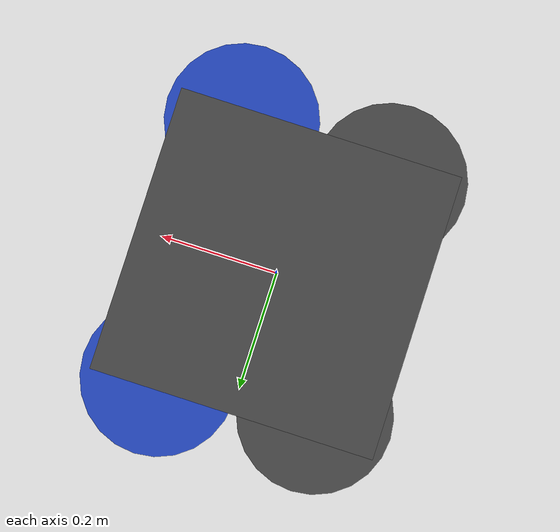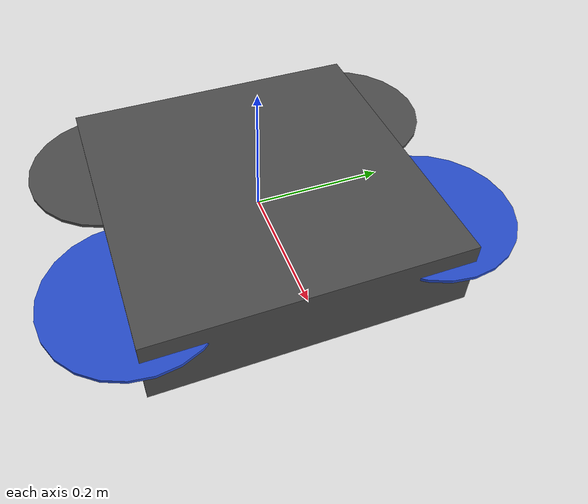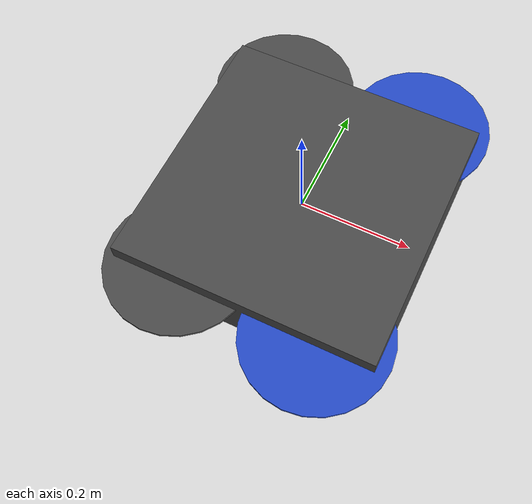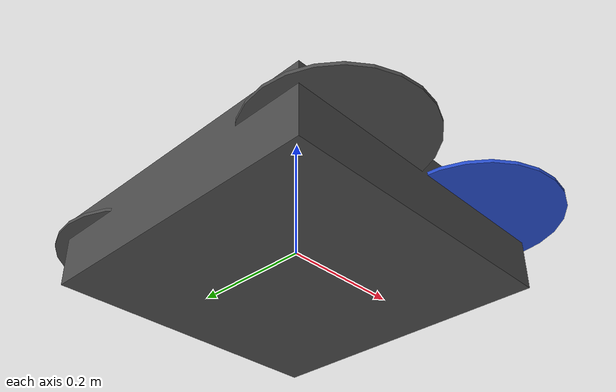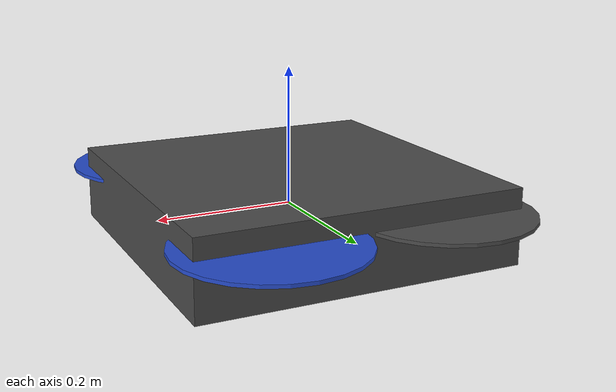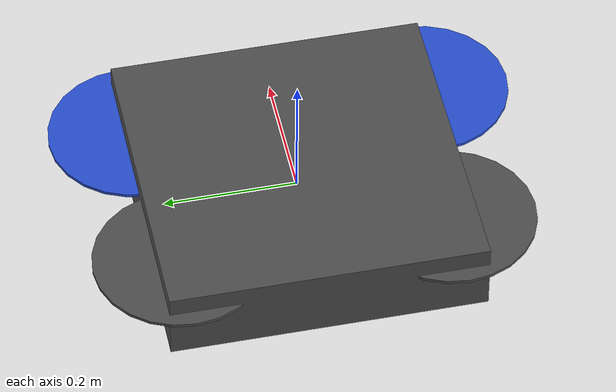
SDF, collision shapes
<sdf version='1.6'>
  <model name='iris'>
    <link name='base_link'>
      <pose frame=''>0 0 0 0 -0 0</pose>
      <inertial>
        <pose frame=''>0 0 0 0 -0 0</pose>
        <mass>1.5</mass>
        <inertia>
          <ixx>0.0347563</ixx>
          <ixy>0</ixy>
          <ixz>0</ixz>
          <iyy>0.0458929</iyy>
          <iyz>0</iyz>
          <izz>0.0977</izz>
        </inertia>
      </inertial>
      <collision name='base_link_inertia_collision'>
        <pose frame=''>0 0 0 0 -0 0</pose>
        <geometry>
          <box>
            <size>0.47 0.47 0.11</size>
          </box>
        </geometry>
        <surface>
          <contact>
            <ode>
              <min_depth>0.001</min_depth>
              <max_vel>0</max_vel>
            </ode>
          </contact>
          <friction>
            <ode/>
          </friction>
        </surface>
      </collision>
      <visual name='base_link_inertia_visual'>
        <pose frame=''>0 0 0 0 -0 0</pose>
        <geometry>
          <mesh>
            <scale>1 1 1</scale>
            <uri>model://rotors_description/meshes/iris.stl</uri>
          </mesh>
        </geometry>
        <material>
          <script>
            <name>Gazebo/DarkGrey</name>
            <uri>file://media/materials/scripts/gazebo.material</uri>
          </script>
        </material>
      </visual>
      <gravity>1</gravity>
      <velocity_decay/>
    </link>
    <link name='/imu_link'>
      <pose frame=''>0 0 0 0 -0 0</pose>
      <inertial>
        <pose frame=''>0 0 0 0 -0 0</pose>
        <mass>0.015</mass>
        <inertia>
          <ixx>1e-05</ixx>
          <ixy>0</ixy>
          <ixz>0</ixz>
          <iyy>1e-05</iyy>
          <iyz>0</iyz>
          <izz>1e-05</izz>
        </inertia>
      </inertial>
    </link>
    <joint name='/imu_joint' type='revolute'>
      <child>/imu_link</child>
      <parent>base_link</parent>
      <axis>
        <xyz>1 0 0</xyz>
        <limit>
          <lower>0</lower>
          <upper>0</upper>
          <effort>0</effort>
          <velocity>0</velocity>
        </limit>
        <dynamics>
          <spring_reference>0</spring_reference>
          <spring_stiffness>0</spring_stiffness>
        </dynamics>
        <use_parent_model_frame>1</use_parent_model_frame>
      </axis>
    </joint>
    <link name='rotor_0'>
      <pose frame=''>0.13 -0.22 0.023 0 -0 0</pose>
      <inertial>
        <pose frame=''>0 0 0 0 -0 0</pose>
        <mass>0.005</mass>
        <inertia>
          <ixx>9.75e-07</ixx>
          <ixy>0</ixy>
          <ixz>0</ixz>
          <iyy>0.000273104</iyy>
          <iyz>0</iyz>
          <izz>0.000274004</izz>
        </inertia>
      </inertial>
      <collision name='rotor_0_collision'>
        <pose frame=''>0 0 0 0 -0 0</pose>
        <geometry>
          <cylinder>
            <length>0.005</length>
            <radius>0.128</radius>
          </cylinder>
        </geometry>
        <surface>
          <contact>
            <ode/>
          </contact>
          <friction>
            <ode/>
          </friction>
        </surface>
      </collision>
      <visual name='rotor_0_visual'>
        <pose frame=''>0 0 0 0 -0 0</pose>
        <geometry>
          <mesh>
            <scale>1 1 1</scale>
            <uri>model://rotors_description/meshes/iris_prop_ccw.dae</uri>
          </mesh>
        </geometry>
        <material>
          <script>
            <name>Gazebo/Blue</name>
            <uri>file://media/materials/scripts/gazebo.material</uri>
          </script>
        </material>
      </visual>
      <gravity>1</gravity>
      <velocity_decay/>
    </link>
    <joint name='rotor_0_joint' type='revolute'>
      <child>rotor_0</child>
      <parent>base_link</parent>
      <axis>
        <xyz>0 0 1</xyz>
        <limit>
          <lower>-1e+16</lower>
          <upper>1e+16</upper>
        </limit>
        <dynamics>
          <spring_reference>0</spring_reference>
          <spring_stiffness>0</spring_stiffness>
        </dynamics>
        <use_parent_model_frame>1</use_parent_model_frame>
      </axis>
    </joint>
    <link name='rotor_1'>
      <pose frame=''>-0.13 0.2 0.023 0 -0 0</pose>
      <inertial>
        <pose frame=''>0 0 0 0 -0 0</pose>
        <mass>0.005</mass>
        <inertia>
          <ixx>9.75e-07</ixx>
          <ixy>0</ixy>
          <ixz>0</ixz>
          <iyy>0.000273104</iyy>
          <iyz>0</iyz>
          <izz>0.000274004</izz>
        </inertia>
      </inertial>
      <collision name='rotor_1_collision'>
        <pose frame=''>0 0 0 0 -0 0</pose>
        <geometry>
          <cylinder>
            <length>0.005</length>
            <radius>0.128</radius>
          </cylinder>
        </geometry>
        <surface>
          <contact>
            <ode/>
          </contact>
          <friction>
            <ode/>
          </friction>
        </surface>
      </collision>
      <visual name='rotor_1_visual'>
        <pose frame=''>0 0 0 0 -0 0</pose>
        <geometry>
          <mesh>
            <scale>1 1 1</scale>
            <uri>model://rotors_description/meshes/iris_prop_ccw.dae</uri>
          </mesh>
        </geometry>
        <material>
          <script>
            <name>Gazebo/DarkGrey</name>
            <uri>file://media/materials/scripts/gazebo.material</uri>
          </script>
        </material>
      </visual>
      <gravity>1</gravity>
      <velocity_decay/>
    </link>
    <joint name='rotor_1_joint' type='revolute'>
      <child>rotor_1</child>
      <parent>base_link</parent>
      <axis>
        <xyz>0 0 1</xyz>
        <limit>
          <lower>-1e+16</lower>
          <upper>1e+16</upper>
        </limit>
        <dynamics>
          <spring_reference>0</spring_reference>
          <spring_stiffness>0</spring_stiffness>
        </dynamics>
        <use_parent_model_frame>1</use_parent_model_frame>
      </axis>
    </joint>
    <link name='rotor_2'>
      <pose frame=''>0.13 0.22 0.023 0 -0 0</pose>
      <inertial>
        <pose frame=''>0 0 0 0 -0 0</pose>
        <mass>0.005</mass>
        <inertia>
          <ixx>9.75e-07</ixx>
          <ixy>0</ixy>
          <ixz>0</ixz>
          <iyy>0.000273104</iyy>
          <iyz>0</iyz>
          <izz>0.000274004</izz>
        </inertia>
      </inertial>
      <collision name='rotor_2_collision'>
        <pose frame=''>0 0 0 0 -0 0</pose>
        <geometry>
          <cylinder>
            <length>0.005</length>
            <radius>0.128</radius>
          </cylinder>
        </geometry>
        <surface>
          <contact>
            <ode/>
          </contact>
          <friction>
            <ode/>
          </friction>
        </surface>
      </collision>
      <visual name='rotor_2_visual'>
        <pose frame=''>0 0 0 0 -0 0</pose>
        <geometry>
          <mesh>
            <scale>1 1 1</scale>
            <uri>model://rotors_description/meshes/iris_prop_cw.dae</uri>
          </mesh>
        </geometry>
        <material>
          <script>
            <name>Gazebo/Blue</name>
            <uri>file://media/materials/scripts/gazebo.material</uri>
          </script>
        </material>
      </visual>
      <gravity>1</gravity>
      <velocity_decay/>
    </link>
    <joint name='rotor_2_joint' type='revolute'>
      <child>rotor_2</child>
      <parent>base_link</parent>
      <axis>
        <xyz>0 0 1</xyz>
        <limit>
          <lower>-1e+16</lower>
          <upper>1e+16</upper>
        </limit>
        <dynamics>
          <spring_reference>0</spring_reference>
          <spring_stiffness>0</spring_stiffness>
        </dynamics>
        <use_parent_model_frame>1</use_parent_model_frame>
      </axis>
    </joint>
    <link name='rotor_3'>
      <pose frame=''>-0.13 -0.2 0.023 0 -0 0</pose>
      <inertial>
        <pose frame=''>0 0 0 0 -0 0</pose>
        <mass>0.005</mass>
        <inertia>
          <ixx>9.75e-07</ixx>
          <ixy>0</ixy>
          <ixz>0</ixz>
          <iyy>0.000273104</iyy>
          <iyz>0</iyz>
          <izz>0.000274004</izz>
        </inertia>
      </inertial>
      <collision name='rotor_3_collision'>
        <pose frame=''>0 0 0 0 -0 0</pose>
        <geometry>
          <cylinder>
            <length>0.005</length>
            <radius>0.128</radius>
          </cylinder>
        </geometry>
        <surface>
          <contact>
            <ode/>
          </contact>
          <friction>
            <ode/>
          </friction>
        </surface>
      </collision>
      <visual name='rotor_3_visual'>
        <pose frame=''>0 0 0 0 -0 0</pose>
        <geometry>
          <mesh>
            <scale>1 1 1</scale>
            <uri>model://rotors_description/meshes/iris_prop_cw.dae</uri>
          </mesh>
        </geometry>
        <material>
          <script>
            <name>Gazebo/DarkGrey</name>
            <uri>file://media/materials/scripts/gazebo.material</uri>
          </script>
        </material>
      </visual>
      <gravity>1</gravity>
      <velocity_decay/>
    </link>
    <joint name='rotor_3_joint' type='revolute'>
      <child>rotor_3</child>
      <parent>base_link</parent>
      <axis>
        <xyz>0 0 1</xyz>
        <limit>
          <lower>-1e+16</lower>
          <upper>1e+16</upper>
        </limit>
        <dynamics>
          <spring_reference>0</spring_reference>
          <spring_stiffness>0</spring_stiffness>
        </dynamics>
        <use_parent_model_frame>1</use_parent_model_frame>
      </axis>
    </joint>
    <plugin name='rosbag' filename='libgazebo_multirotor_base_plugin.so'>
      <robotNamespace/>
      <linkName>base_link</linkName>
      <rotorVelocitySlowdownSim>10</rotorVelocitySlowdownSim>
    </plugin>
    <plugin name='front_right_motor_model' filename='libgazebo_motor_model.so'>
      <robotNamespace/>
      <jointName>rotor_0_joint</jointName>
      <linkName>rotor_0</linkName>
      <turningDirection>ccw</turningDirection>
      <timeConstantUp>0.0125</timeConstantUp>
      <timeConstantDown>0.025</timeConstantDown>
      <maxRotVelocity>1100</maxRotVelocity>
      <motorConstant>8.54858e-06</motorConstant>
      <momentConstant>0.06</momentConstant>
      <commandSubTopic>/gazebo/command/motor_speed</commandSubTopic>
      <motorNumber>0</motorNumber>
      <rotorDragCoefficient>0.000806428</rotorDragCoefficient>
      <rollingMomentCoefficient>1e-06</rollingMomentCoefficient>
      <motorSpeedPubTopic>/motor_speed/0</motorSpeedPubTopic>
      <rotorVelocitySlowdownSim>10</rotorVelocitySlowdownSim>
    </plugin>
    <plugin name='back_left_motor_model' filename='libgazebo_motor_model.so'>
      <robotNamespace/>
      <jointName>rotor_1_joint</jointName>
      <linkName>rotor_1</linkName>
      <turningDirection>ccw</turningDirection>
      <timeConstantUp>0.0125</timeConstantUp>
      <timeConstantDown>0.025</timeConstantDown>
      <maxRotVelocity>1100</maxRotVelocity>
      <motorConstant>8.54858e-06</motorConstant>
      <momentConstant>0.06</momentConstant>
      <commandSubTopic>/gazebo/command/motor_speed</commandSubTopic>
      <motorNumber>1</motorNumber>
      <rotorDragCoefficient>0.000806428</rotorDragCoefficient>
      <rollingMomentCoefficient>1e-06</rollingMomentCoefficient>
      <motorSpeedPubTopic>/motor_speed/1</motorSpeedPubTopic>
      <rotorVelocitySlowdownSim>10</rotorVelocitySlowdownSim>
    </plugin>
    <plugin name='front_left_motor_model' filename='libgazebo_motor_model.so'>
      <robotNamespace/>
      <jointName>rotor_2_joint</jointName>
      <linkName>rotor_2</linkName>
      <turningDirection>cw</turningDirection>
      <timeConstantUp>0.0125</timeConstantUp>
      <timeConstantDown>0.025</timeConstantDown>
      <maxRotVelocity>1100</maxRotVelocity>
      <motorConstant>8.54858e-06</motorConstant>
      <momentConstant>0.06</momentConstant>
      <commandSubTopic>/gazebo/command/motor_speed</commandSubTopic>
      <motorNumber>2</motorNumber>
      <rotorDragCoefficient>0.000806428</rotorDragCoefficient>
      <rollingMomentCoefficient>1e-06</rollingMomentCoefficient>
      <motorSpeedPubTopic>/motor_speed/2</motorSpeedPubTopic>
      <rotorVelocitySlowdownSim>10</rotorVelocitySlowdownSim>
    </plugin>
    <plugin name='back_right_motor_model' filename='libgazebo_motor_model.so'>
      <robotNamespace/>
      <jointName>rotor_3_joint</jointName>
      <linkName>rotor_3</linkName>
      <turningDirection>cw</turningDirection>
      <timeConstantUp>0.0125</timeConstantUp>
      <timeConstantDown>0.025</timeConstantDown>
      <maxRotVelocity>1100</maxRotVelocity>
      <motorConstant>8.54858e-06</motorConstant>
      <momentConstant>0.06</momentConstant>
      <commandSubTopic>/gazebo/command/motor_speed</commandSubTopic>
      <motorNumber>3</motorNumber>
      <rotorDragCoefficient>0.000806428</rotorDragCoefficient>
      <rollingMomentCoefficient>1e-06</rollingMomentCoefficient>
      <motorSpeedPubTopic>/motor_speed/3</motorSpeedPubTopic>
      <rotorVelocitySlowdownSim>10</rotorVelocitySlowdownSim>
    </plugin>
    <plugin name='gps_plugin' filename='libgazebo_gps_plugin.so'>
      <robotNamespace/>
      <gpsNoise>1</gpsNoise>
    </plugin>
    <plugin name='mavlink_interface' filename='libgazebo_mavlink_interface.so'>
      <robotNamespace/>
      <imuSubTopic>/imu</imuSubTopic>
      <gpsSubTopic>/gps</gpsSubTopic>
      <mavlink_addr>INADDR_ANY</mavlink_addr>
      <mavlink_udp_port>14560</mavlink_udp_port>
      <serialEnabled>0</serialEnabled>
      <serialDevice>/dev/ttyACM0</serialDevice>
      <baudRate>921600</baudRate>
      <qgc_addr>INADDR_ANY</qgc_addr>
      <qgc_udp_port>14550</qgc_udp_port>
      <hil_mode>0</hil_mode>
      <hil_state_level>0</hil_state_level>
      <vehicle_is_tailsitter>0</vehicle_is_tailsitter>
      <motorSpeedCommandPubTopic>/gazebo/command/motor_speed</motorSpeedCommandPubTopic>
      <control_channels>
        <channel name='rotor1'>
          <input_index>0</input_index>
          <input_offset>0</input_offset>
          <input_scaling>1000</input_scaling>
          <zero_position_disarmed>0</zero_position_disarmed>
          <zero_position_armed>100</zero_position_armed>
          <joint_control_type>velocity</joint_control_type>
        </channel>
        <channel name='rotor2'>
          <input_index>1</input_index>
          <input_offset>0</input_offset>
          <input_scaling>1000</input_scaling>
          <zero_position_disarmed>0</zero_position_disarmed>
          <zero_position_armed>100</zero_position_armed>
          <joint_control_type>velocity</joint_control_type>
        </channel>
        <channel name='rotor3'>
          <input_index>2</input_index>
          <input_offset>0</input_offset>
          <input_scaling>1000</input_scaling>
          <zero_position_disarmed>0</zero_position_disarmed>
          <zero_position_armed>100</zero_position_armed>
          <joint_control_type>velocity</joint_control_type>
        </channel>
        <channel name='rotor4'>
          <input_index>3</input_index>
          <input_offset>0</input_offset>
          <input_scaling>1000</input_scaling>
          <zero_position_disarmed>0</zero_position_disarmed>
          <zero_position_armed>100</zero_position_armed>
          <joint_control_type>velocity</joint_control_type>
        </channel>
        <channel name='rotor5'>
          <input_index>4</input_index>
          <input_offset>1</input_offset>
          <input_scaling>324.6</input_scaling>
          <zero_position_disarmed>0</zero_position_disarmed>
          <zero_position_armed>0</zero_position_armed>
          <joint_control_type>velocity</joint_control_type>
          <joint_control_pid>
            <p>0.1</p>
            <i>0</i>
            <d>0</d>
            <iMax>0.0</iMax>
            <iMin>0.0</iMin>
            <cmdMax>2</cmdMax>
            <cmdMin>-2</cmdMin>
          </joint_control_pid>
          <joint_name>zephyr_delta_wing::propeller_joint</joint_name>
        </channel>
        <channel name='rotor6'>
          <input_index>5</input_index>
          <input_offset>0</input_offset>
          <input_scaling>0.524</input_scaling>
          <zero_position_disarmed>0</zero_position_disarmed>
          <zero_position_armed>0</zero_position_armed>
          <joint_control_type>position</joint_control_type>
          <joint_name>zephyr_delta_wing::flap_left_joint</joint_name>
          <joint_control_pid>
            <p>10.0</p>
            <i>0</i>
            <d>0</d>
            <iMax>0</iMax>
            <iMin>0</iMin>
            <cmdMax>20</cmdMax>
            <cmdMin>-20</cmdMin>
          </joint_control_pid>
        </channel>
        <channel name='rotor7'>
          <input_index>6</input_index>
          <input_offset>0</input_offset>
          <input_scaling>0.524</input_scaling>
          <zero_position_disarmed>0</zero_position_disarmed>
          <zero_position_armed>0</zero_position_armed>
          <joint_control_type>position</joint_control_type>
          <joint_name>zephyr_delta_wing::flap_right_joint</joint_name>
          <joint_control_pid>
            <p>10.0</p>
            <i>0</i>
            <d>0</d>
            <iMax>0</iMax>
            <iMin>0</iMin>
            <cmdMax>20</cmdMax>
            <cmdMin>-20</cmdMin>
          </joint_control_pid>
        </channel>
        <channel name='rotor8'>
          <input_index>7</input_index>
          <input_offset>0</input_offset>
          <input_scaling>0.524</input_scaling>
          <zero_position_disarmed>0</zero_position_disarmed>
          <zero_position_armed>0</zero_position_armed>
          <joint_control_type>position</joint_control_type>
        </channel>
      </control_channels>
    </plugin>
    <static>0</static>
    <plugin name='rotors_gazebo_imu_plugin' filename='libgazebo_imu_plugin.so'>
      <robotNamespace/>
      <linkName>/imu_link</linkName>
      <imuTopic>/imu</imuTopic>
      <gyroscopeNoiseDensity>0.0003394</gyroscopeNoiseDensity>
      <gyroscopeRandomWalk>3.8785e-05</gyroscopeRandomWalk>
      <gyroscopeBiasCorrelationTime>1000.0</gyroscopeBiasCorrelationTime>
      <gyroscopeTurnOnBiasSigma>0.0087</gyroscopeTurnOnBiasSigma>
      <accelerometerNoiseDensity>0.004</accelerometerNoiseDensity>
      <accelerometerRandomWalk>0.006</accelerometerRandomWalk>
      <accelerometerBiasCorrelationTime>300.0</accelerometerBiasCorrelationTime>
      <accelerometerTurnOnBiasSigma>0.196</accelerometerTurnOnBiasSigma>
    </plugin>
    <include>
      <uri>model://realsense_camera</uri>
      <pose>0 0 0 0 3.14 -1.57</pose>
    </include>
    <joint name="realsense_camera_joint" type="fixed">
      <child>realsense_camera::camera_link</child>
      <parent>base_link</parent>
      <axis>
        <xyz>0 0 1</xyz>
        <limit>
          <upper>0</upper>
          <lower>0</lower>
        </limit>
      </axis>
    </joint>
  </model>
</sdf>

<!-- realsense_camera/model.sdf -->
<sdf version="1.6">
  <model name="realsense_camera">
    <link name="camera_link">
      <inertial>
        <mass>0.0564</mass>
        <inertia>
          <ixx>4.1e-05</ixx>
          <ixy>0</ixy>
          <ixz>0</ixz>
          <iyy>5.9e-06</iyy>
          <iyz>0</iyz>
          <izz>5.9e-06</izz>
        </inertia>
      </inertial>
      <self_collide>0</self_collide>
      <kinematic>0</kinematic>
      <gravity>1</gravity>
      <visual name="visual">
        <geometry>
         <mesh>
            <uri>model://realsense_camera/meshes/realsense_d435.stl</uri>
          </mesh>
        </geometry>
      </visual>
      <collision name='collision'>
        <pose>0 0 0 0 0 0</pose>
        <geometry>
          <box>
            <size>0.02505 0.090 0.025</size>
          </box>
        </geometry>
        <surface>
          <friction>
            <ode>
              <mu>1</mu>
              <mu2>1</mu2>
              <fdir1>0 0 0</fdir1>
              <slip1>0</slip1>
              <slip2>0</slip2>
            </ode>
          </friction>
          <bounce>
            <restitution_coefficient>0</restitution_coefficient>
            <threshold>1e+06</threshold>
          </bounce>
          <contact>
            <collide_without_contact>0</collide_without_contact>
            <collide_without_contact_bitmask>1</collide_without_contact_bitmask>
            <collide_bitmask>1</collide_bitmask>
            <ode>
              <soft_cfm>0</soft_cfm>
              <soft_erp>0.2</soft_erp>
              <kp>1e+13</kp>
              <kd>1</kd>
              <max_vel>0.01</max_vel>
              <min_depth>0</min_depth>
            </ode>
            <bullet>
              <split_impulse>1</split_impulse>
              <split_impulse_penetration_threshold>-0.01</split_impulse_penetration_threshold>
              <soft_cfm>0</soft_cfm>
              <soft_erp>0.2</soft_erp>
              <kp>1e+13</kp>
              <kd>1</kd>
            </bullet>
          </contact>
        </surface>
      </collision>
    </link>

    <link name="camera_color_frame">
      <pose>0.0325 0 0 3.14 -1.57 1.57</pose>
      <inertial>
        <pose frame=''>0 0 0 0 -0 0</pose>
        <mass>0.0015</mass>
        <inertia>
          <ixx>1e-06</ixx>
          <ixy>0</ixy>
          <ixz>0</ixz>
          <iyy>1e-06</iyy>
          <iyz>0</iyz>
          <izz>1e-06</izz>
        </inertia>
      </inertial>
      <sensor name="color" type="camera">
        <camera name="color">
          <horizontal_fov>1.211</horizontal_fov>
          <image>
            <width>640</width>
            <height>480</height>
            <format>RGB_INT8</format>
          </image>
          <clip>
            <near>0.1</near>
            <far>100</far>
          </clip>
          <noise>
            <type>gaussian</type>
            <mean>0.0</mean>
            <stddev>0.007</stddev>
          </noise>
        </camera>
        <always_on>1</always_on>
        <update_rate>30</update_rate>
        <visualize>1</visualize>
      </sensor>
    </link>
    <joint name='camera_color_joint' type='revolute'>
      <child>camera_color_frame</child>
      <parent>camera_link</parent>
      <axis>
        <xyz>1 0 0</xyz>
        <limit>
          <lower>0</lower>
          <upper>0</upper>
          <effort>0</effort>
          <velocity>0</velocity>
        </limit>
        <dynamics>
          <spring_reference>0</spring_reference>
          <spring_stiffness>0</spring_stiffness>
        </dynamics>
        <use_parent_model_frame>1</use_parent_model_frame>
      </axis>
    </joint>

    <link name="camera_ired1_frame">
      <pose>0.02 0 0 3.14 -1.57 1.57</pose>
      <inertial>
        <pose frame=''>0 0 0 0 -0 0</pose>
        <mass>0.0015</mass>
        <inertia>
          <ixx>1e-06</ixx>
          <ixy>0</ixy>
          <ixz>0</ixz>
          <iyy>1e-06</iyy>
          <iyz>0</iyz>
          <izz>1e-06</izz>
        </inertia>
      </inertial>
      <sensor name="ired1" type="camera">
        <camera name="ired1">
          <horizontal_fov>1.571</horizontal_fov>
          <image>
            <width>640</width>
            <height>480</height>
            <format>L_INT8</format>
          </image>
          <clip>
            <near>0.1</near>
            <far>100</far>
          </clip>
          <noise>
            <type>gaussian</type>
            <mean>0.0</mean>
            <stddev>0.007</stddev>
          </noise>
        </camera>
        <always_on>1</always_on>
        <update_rate>30</update_rate>
        <visualize>0</visualize>
      </sensor>
    </link>
    <joint name='camera_ired1_joint' type='revolute'>
      <child>camera_ired1_frame</child>
      <parent>camera_link</parent>
      <axis>
        <xyz>1 0 0</xyz>
        <limit>
          <lower>0</lower>
          <upper>0</upper>
          <effort>0</effort>
          <velocity>0</velocity>
        </limit>
        <dynamics>
          <spring_reference>0</spring_reference>
          <spring_stiffness>0</spring_stiffness>
        </dynamics>
        <use_parent_model_frame>1</use_parent_model_frame>
      </axis>
    </joint>

    <link name="camera_ired2_frame">
      <pose>-0.03 0 0 3.14 -1.57 1.57</pose>
      <inertial>
        <pose frame=''>0 0 0 0 -0 0</pose>
        <mass>0.0015</mass>
        <inertia>
          <ixx>1e-06</ixx>
          <ixy>0</ixy>
          <ixz>0</ixz>
          <iyy>1e-06</iyy>
          <iyz>0</iyz>
          <izz>1e-06</izz>
        </inertia>
      </inertial>
      <sensor name="ired2" type="camera">
        <camera name="ired2">
          <horizontal_fov>1.571</horizontal_fov>
          <image>
            <width>640</width>
            <height>480</height>
            <format>L_INT8</format>
          </image>
          <clip>
            <near>0.1</near>
            <far>100</far>
          </clip>
          <noise>
            <type>gaussian</type>
            <mean>0.0</mean>
            <stddev>0.007</stddev>
          </noise>
        </camera>
        <always_on>1</always_on>
        <update_rate>30</update_rate>
        <visualize>0</visualize>
      </sensor>
    </link>
    <joint name='camera_ired2_joint' type='revolute'>
      <child>camera_ired2_frame</child>
      <parent>camera_link</parent>
      <axis>
        <xyz>1 0 0</xyz>
        <limit>
          <lower>0</lower>
          <upper>0</upper>
          <effort>0</effort>
          <velocity>0</velocity>
        </limit>
        <dynamics>
          <spring_reference>0</spring_reference>
          <spring_stiffness>0</spring_stiffness>
        </dynamics>
        <use_parent_model_frame>1</use_parent_model_frame>
      </axis>
    </joint>

    <link name="camera_depth_frame">
      <pose>0.0325 0 0 3.14 -1.57 1.57</pose>
      <inertial>
        <pose frame=''>0 0 0 0 -0 0</pose>
        <mass>0.0015</mass>
        <inertia>
          <ixx>1e-06</ixx>
          <ixy>0</ixy>
          <ixz>0</ixz>
          <iyy>1e-06</iyy>
          <iyz>0</iyz>
          <izz>1e-06</izz>
        </inertia>
      </inertial>
      <sensor name="depth" type="depth">
        <camera name="depth">
          <horizontal_fov>1.571</horizontal_fov>
          <image>
            <width>640</width>
            <height>480</height>
          </image>
          <clip>
            <near>0.1</near>
            <far>100</far>
          </clip>
          <noise>
            <type>gaussian</type>
            <mean>0.0</mean>
            <stddev>0.007</stddev>
          </noise>
        </camera>
        <always_on>1</always_on>
        <update_rate>30</update_rate>
        <visualize>0</visualize>

      </sensor>
    </link>
    <joint name='camera_depth_joint' type='revolute'>
      <child>camera_depth_frame</child>
      <parent>camera_link</parent>
      <axis>
        <xyz>1 0 0</xyz>
        <limit>
          <lower>0</lower>
          <upper>0</upper>
          <effort>0</effort>
          <velocity>0</velocity>
        </limit>
        <dynamics>
          <spring_reference>0</spring_reference>
          <spring_stiffness>0</spring_stiffness>
        </dynamics>
        <use_parent_model_frame>1</use_parent_model_frame>
      </axis>
    </joint>

    <plugin name="camera" filename="librealsense_gazebo_plugin.so">
       <depthUpdateRate>${rate}</depthUpdateRate>
       <colorUpdateRate>${rate}</colorUpdateRate>
       <infraredUpdateRate>${rate}</infraredUpdateRate>
       <depthTopicName>depth/image_raw</depthTopicName>
       <depthCameraInfoTopicName>depth/camera_info</depthCameraInfoTopicName>
       <colorTopicName>color/image_raw</colorTopicName>
       <colorCameraInfoTopicName>color/camera_info</colorCameraInfoTopicName>
       <infrared1TopicName>infra1/image_raw</infrared1TopicName>
       <infrared1CameraInfoTopicName>infra1/camera_info</infrared1CameraInfoTopicName>
       <infrared2TopicName>infra2/image_raw</infrared2TopicName>
       <infrared2CameraInfoTopicName>infra2/camera_info</infrared2CameraInfoTopicName>
       <colorOpticalframeName>camera_color_frame</colorOpticalframeName>
       <depthOpticalframeName>camera_depth_frame</depthOpticalframeName>
       <infrared1OpticalframeName>camera_ired1_frame</infrared1OpticalframeName>
       <infrared2OpticalframeName>camera_ired2_frame</infrared2OpticalframeName>
       <rangeMinDepth>0.2</rangeMinDepth>
       <rangeMaxDepth>20.0</rangeMaxDepth>
       <pointCloud>true</pointCloud>
       <pointCloudTopicName>depth/color/points</pointCloudTopicName>
       <pointCloudCutoff>0.25</pointCloudCutoff>
       <pointCloudCutoffMax>20.0</pointCloudCutoffMax>
     </plugin>

  </model>
</sdf>
